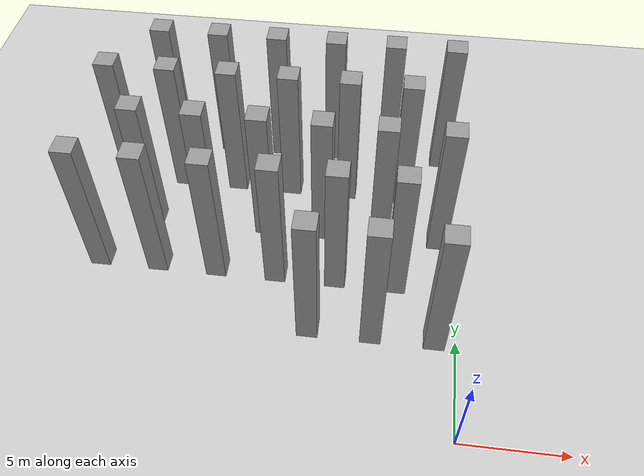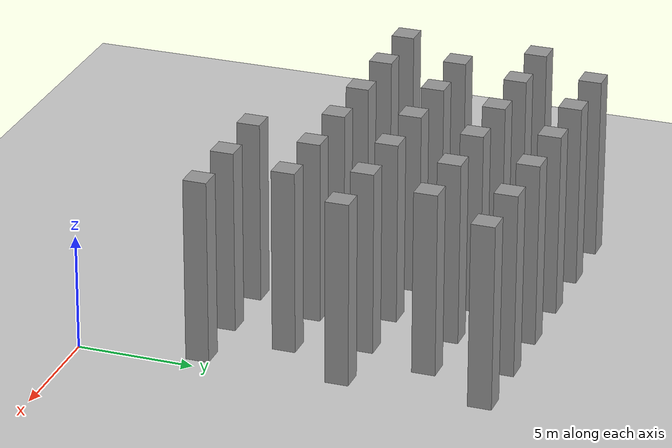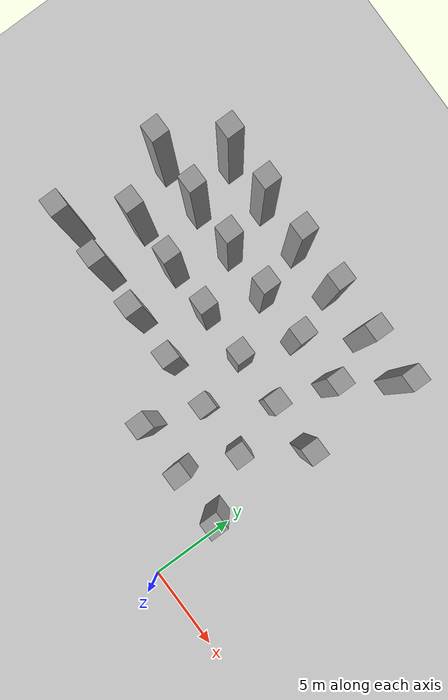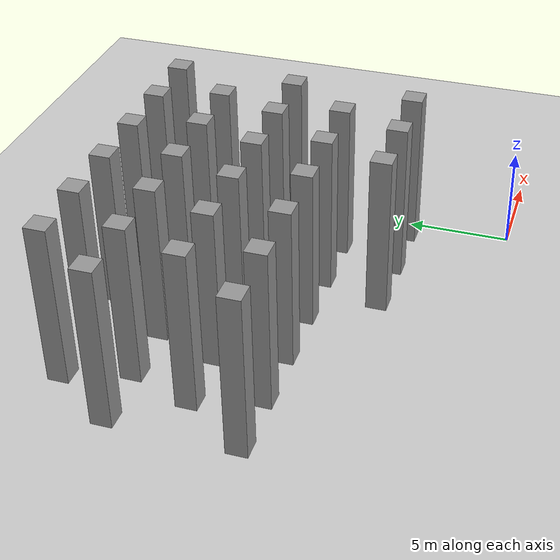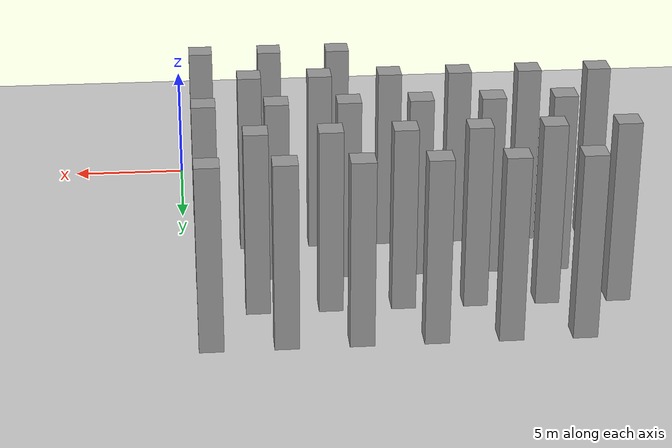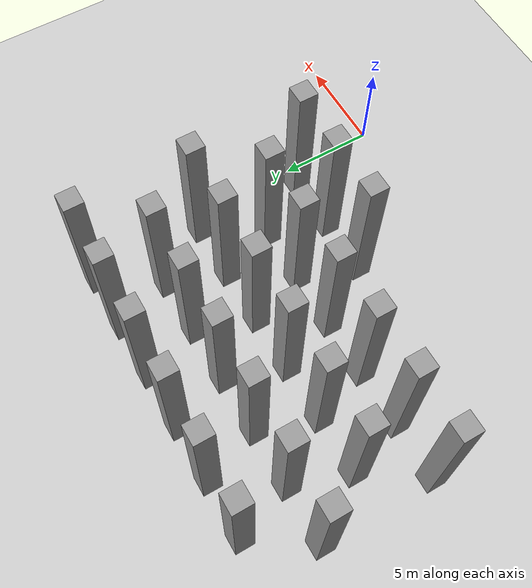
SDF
<sdf version="1.7">
 <world name="default">
  <model name="ground_plane">
   <static>1</static>
   <link name="link">
    <collision name="collision">
     <geometry><plane><normal>0 0 1</normal><size>100 100</size></plane></geometry>
     <surface>
      <contact><collide_bitmask>65535</collide_bitmask></contact>
      <friction><ode><mu>100</mu><mu2>50</mu2></ode></friction>
     </surface>
    </collision>
    <visual name="visual">
     <cast_shadows>0</cast_shadows>
     <geometry><plane><normal>0 0 1</normal><size>100 100</size></plane></geometry>
     <material>
      <script><uri>file://media/materials/scripts/gazebo.material</uri><name>Gazebo/Grey</name></script>
     </material>
    </visual>
   </link>
  </model>
  <model name="unit_box_static104">
   <link name="link">
    <inertial>
     <mass>1</mass>
     <inertia>
      <ixx>0.166667</ixx>
      <ixy>0</ixy>
      <ixz>0</ixz>
      <iyy>0.166667</iyy>
      <iyz>0</iyz>
      <izz>0.166667</izz>
     </inertia>
    </inertial>
    <visual name="visual">
     <geometry><box><size>1 1 8</size></box></geometry>
     <material>
      <script><name>Gazebo/Grey</name><uri>file://media/materials/scripts/gazebo.material</uri></script>
      <shader type="pixel"/>
     </material>
    </visual>
    <collision name="collision">
     <geometry><box><size>1 1 8</size></box></geometry>
     <surface>
      <friction>
       <ode><mu>1</mu><mu2>1</mu2><fdir1>0 0 0</fdir1><slip1>0</slip1><slip2>0</slip2></ode>
       <torsional>
        <coefficient>1</coefficient>
        <patch_radius>0</patch_radius>
        <surface_radius>0</surface_radius>
        <use_patch_radius>1</use_patch_radius>
        <ode><slip>0</slip></ode>
       </torsional>
      </friction>
      <bounce><restitution_coefficient>0</restitution_coefficient><threshold>1e+06</threshold></bounce>
      <contact>
       <collide_without_contact>0</collide_without_contact>
       <collide_without_contact_bitmask>1</collide_without_contact_bitmask>
       <collide_bitmask>1</collide_bitmask>
       <ode>
        <soft_cfm>0</soft_cfm>
        <soft_erp>0.2</soft_erp>
        <kp>1e+13</kp>
        <kd>1</kd>
        <max_vel>0.01</max_vel>
        <min_depth>0</min_depth>
       </ode>
       <bullet>
        <split_impulse>1</split_impulse>
        <split_impulse_penetration_threshold>-0.01</split_impulse_penetration_threshold>
        <soft_cfm>0</soft_cfm>
        <soft_erp>0.2</soft_erp>
        <kp>1e+13</kp>
        <kd>1</kd>
       </bullet>
      </contact>
     </surface>
    </collision>
   </link>
   <static>1</static>
   <pose>-7 5 4 0 -0 0</pose>
  </model>
  <model name="unit_box_static105">
   <link name="link">
    <inertial>
     <mass>1</mass>
     <inertia>
      <ixx>0.166667</ixx>
      <ixy>0</ixy>
      <ixz>0</ixz>
      <iyy>0.166667</iyy>
      <iyz>0</iyz>
      <izz>0.166667</izz>
     </inertia>
    </inertial>
    <visual name="visual">
     <geometry><box><size>1 1 8</size></box></geometry>
     <material>
      <script><name>Gazebo/Grey</name><uri>file://media/materials/scripts/gazebo.material</uri></script>
      <shader type="pixel"/>
     </material>
    </visual>
    <collision name="collision">
     <geometry><box><size>1 1 8</size></box></geometry>
     <surface>
      <friction>
       <ode><mu>1</mu><mu2>1</mu2><fdir1>0 0 0</fdir1><slip1>0</slip1><slip2>0</slip2></ode>
       <torsional>
        <coefficient>1</coefficient>
        <patch_radius>0</patch_radius>
        <surface_radius>0</surface_radius>
        <use_patch_radius>1</use_patch_radius>
        <ode><slip>0</slip></ode>
       </torsional>
      </friction>
      <bounce><restitution_coefficient>0</restitution_coefficient><threshold>1e+06</threshold></bounce>
      <contact>
       <collide_without_contact>0</collide_without_contact>
       <collide_without_contact_bitmask>1</collide_without_contact_bitmask>
       <collide_bitmask>1</collide_bitmask>
       <ode>
        <soft_cfm>0</soft_cfm>
        <soft_erp>0.2</soft_erp>
        <kp>1e+13</kp>
        <kd>1</kd>
        <max_vel>0.01</max_vel>
        <min_depth>0</min_depth>
       </ode>
       <bullet>
        <split_impulse>1</split_impulse>
        <split_impulse_penetration_threshold>-0.01</split_impulse_penetration_threshold>
        <soft_cfm>0</soft_cfm>
        <soft_erp>0.2</soft_erp>
        <kp>1e+13</kp>
        <kd>1</kd>
       </bullet>
      </contact>
     </surface>
    </collision>
   </link>
   <static>1</static>
   <pose>-4 5 4 0 -0 0</pose>
  </model>
  <model name="unit_box_static106">
   <link name="link">
    <inertial>
     <mass>1</mass>
     <inertia>
      <ixx>0.166667</ixx>
      <ixy>0</ixy>
      <ixz>0</ixz>
      <iyy>0.166667</iyy>
      <iyz>0</iyz>
      <izz>0.166667</izz>
     </inertia>
    </inertial>
    <visual name="visual">
     <geometry><box><size>1 1 8</size></box></geometry>
     <material>
      <script><name>Gazebo/Grey</name><uri>file://media/materials/scripts/gazebo.material</uri></script>
      <shader type="pixel"/>
     </material>
    </visual>
    <collision name="collision">
     <geometry><box><size>1 1 8</size></box></geometry>
     <surface>
      <friction>
       <ode><mu>1</mu><mu2>1</mu2><fdir1>0 0 0</fdir1><slip1>0</slip1><slip2>0</slip2></ode>
       <torsional>
        <coefficient>1</coefficient>
        <patch_radius>0</patch_radius>
        <surface_radius>0</surface_radius>
        <use_patch_radius>1</use_patch_radius>
        <ode><slip>0</slip></ode>
       </torsional>
      </friction>
      <bounce><restitution_coefficient>0</restitution_coefficient><threshold>1e+06</threshold></bounce>
      <contact>
       <collide_without_contact>0</collide_without_contact>
       <collide_without_contact_bitmask>1</collide_without_contact_bitmask>
       <collide_bitmask>1</collide_bitmask>
       <ode>
        <soft_cfm>0</soft_cfm>
        <soft_erp>0.2</soft_erp>
        <kp>1e+13</kp>
        <kd>1</kd>
        <max_vel>0.01</max_vel>
        <min_depth>0</min_depth>
       </ode>
       <bullet>
        <split_impulse>1</split_impulse>
        <split_impulse_penetration_threshold>-0.01</split_impulse_penetration_threshold>
        <soft_cfm>0</soft_cfm>
        <soft_erp>0.2</soft_erp>
        <kp>1e+13</kp>
        <kd>1</kd>
       </bullet>
      </contact>
     </surface>
    </collision>
   </link>
   <static>1</static>
   <pose>-1 5 4 0 -0 0</pose>
  </model>
  <model name="unit_box_static113">
   <link name="link">
    <inertial>
     <mass>1</mass>
     <inertia>
      <ixx>0.166667</ixx>
      <ixy>0</ixy>
      <ixz>0</ixz>
      <iyy>0.166667</iyy>
      <iyz>0</iyz>
      <izz>0.166667</izz>
     </inertia>
    </inertial>
    <visual name="visual">
     <geometry><box><size>1 1 8</size></box></geometry>
     <material>
      <script><name>Gazebo/Grey</name><uri>file://media/materials/scripts/gazebo.material</uri></script>
      <shader type="pixel"/>
     </material>
    </visual>
    <collision name="collision">
     <geometry><box><size>1 1 8</size></box></geometry>
     <surface>
      <friction>
       <ode><mu>1</mu><mu2>1</mu2><fdir1>0 0 0</fdir1><slip1>0</slip1><slip2>0</slip2></ode>
       <torsional>
        <coefficient>1</coefficient>
        <patch_radius>0</patch_radius>
        <surface_radius>0</surface_radius>
        <use_patch_radius>1</use_patch_radius>
        <ode><slip>0</slip></ode>
       </torsional>
      </friction>
      <bounce><restitution_coefficient>0</restitution_coefficient><threshold>1e+06</threshold></bounce>
      <contact>
       <collide_without_contact>0</collide_without_contact>
       <collide_without_contact_bitmask>1</collide_without_contact_bitmask>
       <collide_bitmask>1</collide_bitmask>
       <ode>
        <soft_cfm>0</soft_cfm>
        <soft_erp>0.2</soft_erp>
        <kp>1e+13</kp>
        <kd>1</kd>
        <max_vel>0.01</max_vel>
        <min_depth>0</min_depth>
       </ode>
       <bullet>
        <split_impulse>1</split_impulse>
        <split_impulse_penetration_threshold>-0.01</split_impulse_penetration_threshold>
        <soft_cfm>0</soft_cfm>
        <soft_erp>0.2</soft_erp>
        <kp>1e+13</kp>
        <kd>1</kd>
       </bullet>
      </contact>
     </surface>
    </collision>
   </link>
   <static>1</static>
   <pose>-18 8 4 0 -0 0</pose>
  </model>
  <model name="unit_box_static114">
   <link name="link">
    <inertial>
     <mass>1</mass>
     <inertia>
      <ixx>0.166667</ixx>
      <ixy>0</ixy>
      <ixz>0</ixz>
      <iyy>0.166667</iyy>
      <iyz>0</iyz>
      <izz>0.166667</izz>
     </inertia>
    </inertial>
    <visual name="visual">
     <geometry><box><size>1 1 8</size></box></geometry>
     <material>
      <script><name>Gazebo/Grey</name><uri>file://media/materials/scripts/gazebo.material</uri></script>
      <shader type="pixel"/>
     </material>
    </visual>
    <collision name="collision">
     <geometry><box><size>1 1 8</size></box></geometry>
     <surface>
      <friction>
       <ode><mu>1</mu><mu2>1</mu2><fdir1>0 0 0</fdir1><slip1>0</slip1><slip2>0</slip2></ode>
       <torsional>
        <coefficient>1</coefficient>
        <patch_radius>0</patch_radius>
        <surface_radius>0</surface_radius>
        <use_patch_radius>1</use_patch_radius>
        <ode><slip>0</slip></ode>
       </torsional>
      </friction>
      <bounce><restitution_coefficient>0</restitution_coefficient><threshold>1e+06</threshold></bounce>
      <contact>
       <collide_without_contact>0</collide_without_contact>
       <collide_without_contact_bitmask>1</collide_without_contact_bitmask>
       <collide_bitmask>1</collide_bitmask>
       <ode>
        <soft_cfm>0</soft_cfm>
        <soft_erp>0.2</soft_erp>
        <kp>1e+13</kp>
        <kd>1</kd>
        <max_vel>0.01</max_vel>
        <min_depth>0</min_depth>
       </ode>
       <bullet>
        <split_impulse>1</split_impulse>
        <split_impulse_penetration_threshold>-0.01</split_impulse_penetration_threshold>
        <soft_cfm>0</soft_cfm>
        <soft_erp>0.2</soft_erp>
        <kp>1e+13</kp>
        <kd>1</kd>
       </bullet>
      </contact>
     </surface>
    </collision>
   </link>
   <static>1</static>
   <pose>-15 8 4 0 -0 0</pose>
  </model>
  <model name="unit_box_static115">
   <link name="link">
    <inertial>
     <mass>1</mass>
     <inertia>
      <ixx>0.166667</ixx>
      <ixy>0</ixy>
      <ixz>0</ixz>
      <iyy>0.166667</iyy>
      <iyz>0</iyz>
      <izz>0.166667</izz>
     </inertia>
    </inertial>
    <visual name="visual">
     <geometry><box><size>1 1 8</size></box></geometry>
     <material>
      <script><name>Gazebo/Grey</name><uri>file://media/materials/scripts/gazebo.material</uri></script>
      <shader type="pixel"/>
     </material>
    </visual>
    <collision name="collision">
     <geometry><box><size>1 1 8</size></box></geometry>
     <surface>
      <friction>
       <ode><mu>1</mu><mu2>1</mu2><fdir1>0 0 0</fdir1><slip1>0</slip1><slip2>0</slip2></ode>
       <torsional>
        <coefficient>1</coefficient>
        <patch_radius>0</patch_radius>
        <surface_radius>0</surface_radius>
        <use_patch_radius>1</use_patch_radius>
        <ode><slip>0</slip></ode>
       </torsional>
      </friction>
      <bounce><restitution_coefficient>0</restitution_coefficient><threshold>1e+06</threshold></bounce>
      <contact>
       <collide_without_contact>0</collide_without_contact>
       <collide_without_contact_bitmask>1</collide_without_contact_bitmask>
       <collide_bitmask>1</collide_bitmask>
       <ode>
        <soft_cfm>0</soft_cfm>
        <soft_erp>0.2</soft_erp>
        <kp>1e+13</kp>
        <kd>1</kd>
        <max_vel>0.01</max_vel>
        <min_depth>0</min_depth>
       </ode>
       <bullet>
        <split_impulse>1</split_impulse>
        <split_impulse_penetration_threshold>-0.01</split_impulse_penetration_threshold>
        <soft_cfm>0</soft_cfm>
        <soft_erp>0.2</soft_erp>
        <kp>1e+13</kp>
        <kd>1</kd>
       </bullet>
      </contact>
     </surface>
    </collision>
   </link>
   <static>1</static>
   <pose>-12 8 4 0 -0 0</pose>
  </model>
  <model name="unit_box_static116">
   <link name="link">
    <inertial>
     <mass>1</mass>
     <inertia>
      <ixx>0.166667</ixx>
      <ixy>0</ixy>
      <ixz>0</ixz>
      <iyy>0.166667</iyy>
      <iyz>0</iyz>
      <izz>0.166667</izz>
     </inertia>
    </inertial>
    <visual name="visual">
     <geometry><box><size>1 1 8</size></box></geometry>
     <material>
      <script><name>Gazebo/Grey</name><uri>file://media/materials/scripts/gazebo.material</uri></script>
      <shader type="pixel"/>
     </material>
    </visual>
    <collision name="collision">
     <geometry><box><size>1 1 8</size></box></geometry>
     <surface>
      <friction>
       <ode><mu>1</mu><mu2>1</mu2><fdir1>0 0 0</fdir1><slip1>0</slip1><slip2>0</slip2></ode>
       <torsional>
        <coefficient>1</coefficient>
        <patch_radius>0</patch_radius>
        <surface_radius>0</surface_radius>
        <use_patch_radius>1</use_patch_radius>
        <ode><slip>0</slip></ode>
       </torsional>
      </friction>
      <bounce><restitution_coefficient>0</restitution_coefficient><threshold>1e+06</threshold></bounce>
      <contact>
       <collide_without_contact>0</collide_without_contact>
       <collide_without_contact_bitmask>1</collide_without_contact_bitmask>
       <collide_bitmask>1</collide_bitmask>
       <ode>
        <soft_cfm>0</soft_cfm>
        <soft_erp>0.2</soft_erp>
        <kp>1e+13</kp>
        <kd>1</kd>
        <max_vel>0.01</max_vel>
        <min_depth>0</min_depth>
       </ode>
       <bullet>
        <split_impulse>1</split_impulse>
        <split_impulse_penetration_threshold>-0.01</split_impulse_penetration_threshold>
        <soft_cfm>0</soft_cfm>
        <soft_erp>0.2</soft_erp>
        <kp>1e+13</kp>
        <kd>1</kd>
       </bullet>
      </contact>
     </surface>
    </collision>
   </link>
   <static>1</static>
   <pose>-9 8 4 0 -0 0</pose>
  </model>
  <model name="unit_box_static117">
   <link name="link">
    <inertial>
     <mass>1</mass>
     <inertia>
      <ixx>0.166667</ixx>
      <ixy>0</ixy>
      <ixz>0</ixz>
      <iyy>0.166667</iyy>
      <iyz>0</iyz>
      <izz>0.166667</izz>
     </inertia>
    </inertial>
    <visual name="visual">
     <geometry><box><size>1 1 8</size></box></geometry>
     <material>
      <script><name>Gazebo/Grey</name><uri>file://media/materials/scripts/gazebo.material</uri></script>
      <shader type="pixel"/>
     </material>
    </visual>
    <collision name="collision">
     <geometry><box><size>1 1 8</size></box></geometry>
     <surface>
      <friction>
       <ode><mu>1</mu><mu2>1</mu2><fdir1>0 0 0</fdir1><slip1>0</slip1><slip2>0</slip2></ode>
       <torsional>
        <coefficient>1</coefficient>
        <patch_radius>0</patch_radius>
        <surface_radius>0</surface_radius>
        <use_patch_radius>1</use_patch_radius>
        <ode><slip>0</slip></ode>
       </torsional>
      </friction>
      <bounce><restitution_coefficient>0</restitution_coefficient><threshold>1e+06</threshold></bounce>
      <contact>
       <collide_without_contact>0</collide_without_contact>
       <collide_without_contact_bitmask>1</collide_without_contact_bitmask>
       <collide_bitmask>1</collide_bitmask>
       <ode>
        <soft_cfm>0</soft_cfm>
        <soft_erp>0.2</soft_erp>
        <kp>1e+13</kp>
        <kd>1</kd>
        <max_vel>0.01</max_vel>
        <min_depth>0</min_depth>
       </ode>
       <bullet>
        <split_impulse>1</split_impulse>
        <split_impulse_penetration_threshold>-0.01</split_impulse_penetration_threshold>
        <soft_cfm>0</soft_cfm>
        <soft_erp>0.2</soft_erp>
        <kp>1e+13</kp>
        <kd>1</kd>
       </bullet>
      </contact>
     </surface>
    </collision>
   </link>
   <static>1</static>
   <pose>-6 8 4 0 -0 0</pose>
  </model>
  <model name="unit_box_static118">
   <link name="link">
    <inertial>
     <mass>1</mass>
     <inertia>
      <ixx>0.166667</ixx>
      <ixy>0</ixy>
      <ixz>0</ixz>
      <iyy>0.166667</iyy>
      <iyz>0</iyz>
      <izz>0.166667</izz>
     </inertia>
    </inertial>
    <visual name="visual">
     <geometry><box><size>1 1 8</size></box></geometry>
     <material>
      <script><name>Gazebo/Grey</name><uri>file://media/materials/scripts/gazebo.material</uri></script>
      <shader type="pixel"/>
     </material>
    </visual>
    <collision name="collision">
     <geometry><box><size>1 1 8</size></box></geometry>
     <surface>
      <friction>
       <ode><mu>1</mu><mu2>1</mu2><fdir1>0 0 0</fdir1><slip1>0</slip1><slip2>0</slip2></ode>
       <torsional>
        <coefficient>1</coefficient>
        <patch_radius>0</patch_radius>
        <surface_radius>0</surface_radius>
        <use_patch_radius>1</use_patch_radius>
        <ode><slip>0</slip></ode>
       </torsional>
      </friction>
      <bounce><restitution_coefficient>0</restitution_coefficient><threshold>1e+06</threshold></bounce>
      <contact>
       <collide_without_contact>0</collide_without_contact>
       <collide_without_contact_bitmask>1</collide_without_contact_bitmask>
       <collide_bitmask>1</collide_bitmask>
       <ode>
        <soft_cfm>0</soft_cfm>
        <soft_erp>0.2</soft_erp>
        <kp>1e+13</kp>
        <kd>1</kd>
        <max_vel>0.01</max_vel>
        <min_depth>0</min_depth>
       </ode>
       <bullet>
        <split_impulse>1</split_impulse>
        <split_impulse_penetration_threshold>-0.01</split_impulse_penetration_threshold>
        <soft_cfm>0</soft_cfm>
        <soft_erp>0.2</soft_erp>
        <kp>1e+13</kp>
        <kd>1</kd>
       </bullet>
      </contact>
     </surface>
    </collision>
   </link>
   <static>1</static>
   <pose>-3 8 4 0 -0 0</pose>
  </model>
  <model name="unit_box_static126">
   <link name="link">
    <inertial>
     <mass>1</mass>
     <inertia>
      <ixx>0.166667</ixx>
      <ixy>0</ixy>
      <ixz>0</ixz>
      <iyy>0.166667</iyy>
      <iyz>0</iyz>
      <izz>0.166667</izz>
     </inertia>
    </inertial>
    <visual name="visual">
     <geometry><box><size>1 1 8</size></box></geometry>
     <material>
      <script><name>Gazebo/Grey</name><uri>file://media/materials/scripts/gazebo.material</uri></script>
      <shader type="pixel"/>
     </material>
    </visual>
    <collision name="collision">
     <geometry><box><size>1 1 8</size></box></geometry>
     <surface>
      <friction>
       <ode><mu>1</mu><mu2>1</mu2><fdir1>0 0 0</fdir1><slip1>0</slip1><slip2>0</slip2></ode>
       <torsional>
        <coefficient>1</coefficient>
        <patch_radius>0</patch_radius>
        <surface_radius>0</surface_radius>
        <use_patch_radius>1</use_patch_radius>
        <ode><slip>0</slip></ode>
       </torsional>
      </friction>
      <bounce><restitution_coefficient>0</restitution_coefficient><threshold>1e+06</threshold></bounce>
      <contact>
       <collide_without_contact>0</collide_without_contact>
       <collide_without_contact_bitmask>1</collide_without_contact_bitmask>
       <collide_bitmask>1</collide_bitmask>
       <ode>
        <soft_cfm>0</soft_cfm>
        <soft_erp>0.2</soft_erp>
        <kp>1e+13</kp>
        <kd>1</kd>
        <max_vel>0.01</max_vel>
        <min_depth>0</min_depth>
       </ode>
       <bullet>
        <split_impulse>1</split_impulse>
        <split_impulse_penetration_threshold>-0.01</split_impulse_penetration_threshold>
        <soft_cfm>0</soft_cfm>
        <soft_erp>0.2</soft_erp>
        <kp>1e+13</kp>
        <kd>1</kd>
       </bullet>
      </contact>
     </surface>
    </collision>
   </link>
   <static>1</static>
   <pose>-16 11 4 0 -0 0</pose>
  </model>
  <model name="unit_box_static127">
   <link name="link">
    <inertial>
     <mass>1</mass>
     <inertia>
      <ixx>0.166667</ixx>
      <ixy>0</ixy>
      <ixz>0</ixz>
      <iyy>0.166667</iyy>
      <iyz>0</iyz>
      <izz>0.166667</izz>
     </inertia>
    </inertial>
    <visual name="visual">
     <geometry><box><size>1 1 8</size></box></geometry>
     <material>
      <script><name>Gazebo/Grey</name><uri>file://media/materials/scripts/gazebo.material</uri></script>
      <shader type="pixel"/>
     </material>
    </visual>
    <collision name="collision">
     <geometry><box><size>1 1 8</size></box></geometry>
     <surface>
      <friction>
       <ode><mu>1</mu><mu2>1</mu2><fdir1>0 0 0</fdir1><slip1>0</slip1><slip2>0</slip2></ode>
       <torsional>
        <coefficient>1</coefficient>
        <patch_radius>0</patch_radius>
        <surface_radius>0</surface_radius>
        <use_patch_radius>1</use_patch_radius>
        <ode><slip>0</slip></ode>
       </torsional>
      </friction>
      <bounce><restitution_coefficient>0</restitution_coefficient><threshold>1e+06</threshold></bounce>
      <contact>
       <collide_without_contact>0</collide_without_contact>
       <collide_without_contact_bitmask>1</collide_without_contact_bitmask>
       <collide_bitmask>1</collide_bitmask>
       <ode>
        <soft_cfm>0</soft_cfm>
        <soft_erp>0.2</soft_erp>
        <kp>1e+13</kp>
        <kd>1</kd>
        <max_vel>0.01</max_vel>
        <min_depth>0</min_depth>
       </ode>
       <bullet>
        <split_impulse>1</split_impulse>
        <split_impulse_penetration_threshold>-0.01</split_impulse_penetration_threshold>
        <soft_cfm>0</soft_cfm>
        <soft_erp>0.2</soft_erp>
        <kp>1e+13</kp>
        <kd>1</kd>
       </bullet>
      </contact>
     </surface>
    </collision>
   </link>
   <static>1</static>
   <pose>-13 11 4 0 -0 0</pose>
  </model>
  <model name="unit_box_static128">
   <link name="link">
    <inertial>
     <mass>1</mass>
     <inertia>
      <ixx>0.166667</ixx>
      <ixy>0</ixy>
      <ixz>0</ixz>
      <iyy>0.166667</iyy>
      <iyz>0</iyz>
      <izz>0.166667</izz>
     </inertia>
    </inertial>
    <visual name="visual">
     <geometry><box><size>1 1 8</size></box></geometry>
     <material>
      <script><name>Gazebo/Grey</name><uri>file://media/materials/scripts/gazebo.material</uri></script>
      <shader type="pixel"/>
     </material>
    </visual>
    <collision name="collision">
     <geometry><box><size>1 1 8</size></box></geometry>
     <surface>
      <friction>
       <ode><mu>1</mu><mu2>1</mu2><fdir1>0 0 0</fdir1><slip1>0</slip1><slip2>0</slip2></ode>
       <torsional>
        <coefficient>1</coefficient>
        <patch_radius>0</patch_radius>
        <surface_radius>0</surface_radius>
        <use_patch_radius>1</use_patch_radius>
        <ode><slip>0</slip></ode>
       </torsional>
      </friction>
      <bounce><restitution_coefficient>0</restitution_coefficient><threshold>1e+06</threshold></bounce>
      <contact>
       <collide_without_contact>0</collide_without_contact>
       <collide_without_contact_bitmask>1</collide_without_contact_bitmask>
       <collide_bitmask>1</collide_bitmask>
       <ode>
        <soft_cfm>0</soft_cfm>
        <soft_erp>0.2</soft_erp>
        <kp>1e+13</kp>
        <kd>1</kd>
        <max_vel>0.01</max_vel>
        <min_depth>0</min_depth>
       </ode>
       <bullet>
        <split_impulse>1</split_impulse>
        <split_impulse_penetration_threshold>-0.01</split_impulse_penetration_threshold>
        <soft_cfm>0</soft_cfm>
        <soft_erp>0.2</soft_erp>
        <kp>1e+13</kp>
        <kd>1</kd>
       </bullet>
      </contact>
     </surface>
    </collision>
   </link>
   <static>1</static>
   <pose>-10 11 4 0 -0 0</pose>
  </model>
  <model name="unit_box_static129">
   <link name="link">
    <inertial>
     <mass>1</mass>
     <inertia>
      <ixx>0.166667</ixx>
      <ixy>0</ixy>
      <ixz>0</ixz>
      <iyy>0.166667</iyy>
      <iyz>0</iyz>
      <izz>0.166667</izz>
     </inertia>
    </inertial>
    <visual name="visual">
     <geometry><box><size>1 1 8</size></box></geometry>
     <material>
      <script><name>Gazebo/Grey</name><uri>file://media/materials/scripts/gazebo.material</uri></script>
      <shader type="pixel"/>
     </material>
    </visual>
    <collision name="collision">
     <geometry><box><size>1 1 8</size></box></geometry>
     <surface>
      <friction>
       <ode><mu>1</mu><mu2>1</mu2><fdir1>0 0 0</fdir1><slip1>0</slip1><slip2>0</slip2></ode>
       <torsional>
        <coefficient>1</coefficient>
        <patch_radius>0</patch_radius>
        <surface_radius>0</surface_radius>
        <use_patch_radius>1</use_patch_radius>
        <ode><slip>0</slip></ode>
       </torsional>
      </friction>
      <bounce><restitution_coefficient>0</restitution_coefficient><threshold>1e+06</threshold></bounce>
      <contact>
       <collide_without_contact>0</collide_without_contact>
       <collide_without_contact_bitmask>1</collide_without_contact_bitmask>
       <collide_bitmask>1</collide_bitmask>
       <ode>
        <soft_cfm>0</soft_cfm>
        <soft_erp>0.2</soft_erp>
        <kp>1e+13</kp>
        <kd>1</kd>
        <max_vel>0.01</max_vel>
        <min_depth>0</min_depth>
       </ode>
       <bullet>
        <split_impulse>1</split_impulse>
        <split_impulse_penetration_threshold>-0.01</split_impulse_penetration_threshold>
        <soft_cfm>0</soft_cfm>
        <soft_erp>0.2</soft_erp>
        <kp>1e+13</kp>
        <kd>1</kd>
       </bullet>
      </contact>
     </surface>
    </collision>
   </link>
   <static>1</static>
   <pose>-7 11 4 0 -0 0</pose>
  </model>
  <model name="unit_box_static130">
   <link name="link">
    <inertial>
     <mass>1</mass>
     <inertia>
      <ixx>0.166667</ixx>
      <ixy>0</ixy>
      <ixz>0</ixz>
      <iyy>0.166667</iyy>
      <iyz>0</iyz>
      <izz>0.166667</izz>
     </inertia>
    </inertial>
    <visual name="visual">
     <geometry><box><size>1 1 8</size></box></geometry>
     <material>
      <script><name>Gazebo/Grey</name><uri>file://media/materials/scripts/gazebo.material</uri></script>
      <shader type="pixel"/>
     </material>
    </visual>
    <collision name="collision">
     <geometry><box><size>1 1 8</size></box></geometry>
     <surface>
      <friction>
       <ode><mu>1</mu><mu2>1</mu2><fdir1>0 0 0</fdir1><slip1>0</slip1><slip2>0</slip2></ode>
       <torsional>
        <coefficient>1</coefficient>
        <patch_radius>0</patch_radius>
        <surface_radius>0</surface_radius>
        <use_patch_radius>1</use_patch_radius>
        <ode><slip>0</slip></ode>
       </torsional>
      </friction>
      <bounce><restitution_coefficient>0</restitution_coefficient><threshold>1e+06</threshold></bounce>
      <contact>
       <collide_without_contact>0</collide_without_contact>
       <collide_without_contact_bitmask>1</collide_without_contact_bitmask>
       <collide_bitmask>1</collide_bitmask>
       <ode>
        <soft_cfm>0</soft_cfm>
        <soft_erp>0.2</soft_erp>
        <kp>1e+13</kp>
        <kd>1</kd>
        <max_vel>0.01</max_vel>
        <min_depth>0</min_depth>
       </ode>
       <bullet>
        <split_impulse>1</split_impulse>
        <split_impulse_penetration_threshold>-0.01</split_impulse_penetration_threshold>
        <soft_cfm>0</soft_cfm>
        <soft_erp>0.2</soft_erp>
        <kp>1e+13</kp>
        <kd>1</kd>
       </bullet>
      </contact>
     </surface>
    </collision>
   </link>
   <static>1</static>
   <pose>-4 11 4 0 -0 0</pose>
  </model>
  <model name="unit_box_static131">
   <link name="link">
    <inertial>
     <mass>1</mass>
     <inertia>
      <ixx>0.166667</ixx>
      <ixy>0</ixy>
      <ixz>0</ixz>
      <iyy>0.166667</iyy>
      <iyz>0</iyz>
      <izz>0.166667</izz>
     </inertia>
    </inertial>
    <visual name="visual">
     <geometry><box><size>1 1 8</size></box></geometry>
     <material>
      <script><name>Gazebo/Grey</name><uri>file://media/materials/scripts/gazebo.material</uri></script>
      <shader type="pixel"/>
     </material>
    </visual>
    <collision name="collision">
     <geometry><box><size>1 1 8</size></box></geometry>
     <surface>
      <friction>
       <ode><mu>1</mu><mu2>1</mu2><fdir1>0 0 0</fdir1><slip1>0</slip1><slip2>0</slip2></ode>
       <torsional>
        <coefficient>1</coefficient>
        <patch_radius>0</patch_radius>
        <surface_radius>0</surface_radius>
        <use_patch_radius>1</use_patch_radius>
        <ode><slip>0</slip></ode>
       </torsional>
      </friction>
      <bounce><restitution_coefficient>0</restitution_coefficient><threshold>1e+06</threshold></bounce>
      <contact>
       <collide_without_contact>0</collide_without_contact>
       <collide_without_contact_bitmask>1</collide_without_contact_bitmask>
       <collide_bitmask>1</collide_bitmask>
       <ode>
        <soft_cfm>0</soft_cfm>
        <soft_erp>0.2</soft_erp>
        <kp>1e+13</kp>
        <kd>1</kd>
        <max_vel>0.01</max_vel>
        <min_depth>0</min_depth>
       </ode>
       <bullet>
        <split_impulse>1</split_impulse>
        <split_impulse_penetration_threshold>-0.01</split_impulse_penetration_threshold>
        <soft_cfm>0</soft_cfm>
        <soft_erp>0.2</soft_erp>
        <kp>1e+13</kp>
        <kd>1</kd>
       </bullet>
      </contact>
     </surface>
    </collision>
   </link>
   <static>1</static>
   <pose>-1 11 4 0 -0 0</pose>
  </model>
  <model name="unit_box_static138">
   <link name="link">
    <inertial>
     <mass>1</mass>
     <inertia>
      <ixx>0.166667</ixx>
      <ixy>0</ixy>
      <ixz>0</ixz>
      <iyy>0.166667</iyy>
      <iyz>0</iyz>
      <izz>0.166667</izz>
     </inertia>
    </inertial>
    <visual name="visual">
     <geometry><box><size>1 1 8</size></box></geometry>
     <material>
      <script><name>Gazebo/Grey</name><uri>file://media/materials/scripts/gazebo.material</uri></script>
      <shader type="pixel"/>
     </material>
    </visual>
    <collision name="collision">
     <geometry><box><size>1 1 8</size></box></geometry>
     <surface>
      <friction>
       <ode><mu>1</mu><mu2>1</mu2><fdir1>0 0 0</fdir1><slip1>0</slip1><slip2>0</slip2></ode>
       <torsional>
        <coefficient>1</coefficient>
        <patch_radius>0</patch_radius>
        <surface_radius>0</surface_radius>
        <use_patch_radius>1</use_patch_radius>
        <ode><slip>0</slip></ode>
       </torsional>
      </friction>
      <bounce><restitution_coefficient>0</restitution_coefficient><threshold>1e+06</threshold></bounce>
      <contact>
       <collide_without_contact>0</collide_without_contact>
       <collide_without_contact_bitmask>1</collide_without_contact_bitmask>
       <collide_bitmask>1</collide_bitmask>
       <ode>
        <soft_cfm>0</soft_cfm>
        <soft_erp>0.2</soft_erp>
        <kp>1e+13</kp>
        <kd>1</kd>
        <max_vel>0.01</max_vel>
        <min_depth>0</min_depth>
       </ode>
       <bullet>
        <split_impulse>1</split_impulse>
        <split_impulse_penetration_threshold>-0.01</split_impulse_penetration_threshold>
        <soft_cfm>0</soft_cfm>
        <soft_erp>0.2</soft_erp>
        <kp>1e+13</kp>
        <kd>1</kd>
       </bullet>
      </contact>
     </surface>
    </collision>
   </link>
   <static>1</static>
   <pose>-18 14 4 0 -0 0</pose>
  </model>
  <model name="unit_box_static139">
   <link name="link">
    <inertial>
     <mass>1</mass>
     <inertia>
      <ixx>0.166667</ixx>
      <ixy>0</ixy>
      <ixz>0</ixz>
      <iyy>0.166667</iyy>
      <iyz>0</iyz>
      <izz>0.166667</izz>
     </inertia>
    </inertial>
    <visual name="visual">
     <geometry><box><size>1 1 8</size></box></geometry>
     <material>
      <script><name>Gazebo/Grey</name><uri>file://media/materials/scripts/gazebo.material</uri></script>
      <shader type="pixel"/>
     </material>
    </visual>
    <collision name="collision">
     <geometry><box><size>1 1 8</size></box></geometry>
     <surface>
      <friction>
       <ode><mu>1</mu><mu2>1</mu2><fdir1>0 0 0</fdir1><slip1>0</slip1><slip2>0</slip2></ode>
       <torsional>
        <coefficient>1</coefficient>
        <patch_radius>0</patch_radius>
        <surface_radius>0</surface_radius>
        <use_patch_radius>1</use_patch_radius>
        <ode><slip>0</slip></ode>
       </torsional>
      </friction>
      <bounce><restitution_coefficient>0</restitution_coefficient><threshold>1e+06</threshold></bounce>
      <contact>
       <collide_without_contact>0</collide_without_contact>
       <collide_without_contact_bitmask>1</collide_without_contact_bitmask>
       <collide_bitmask>1</collide_bitmask>
       <ode>
        <soft_cfm>0</soft_cfm>
        <soft_erp>0.2</soft_erp>
        <kp>1e+13</kp>
        <kd>1</kd>
        <max_vel>0.01</max_vel>
        <min_depth>0</min_depth>
       </ode>
       <bullet>
        <split_impulse>1</split_impulse>
        <split_impulse_penetration_threshold>-0.01</split_impulse_penetration_threshold>
        <soft_cfm>0</soft_cfm>
        <soft_erp>0.2</soft_erp>
        <kp>1e+13</kp>
        <kd>1</kd>
       </bullet>
      </contact>
     </surface>
    </collision>
   </link>
   <static>1</static>
   <pose>-15 14 4 0 -0 0</pose>
  </model>
  <model name="unit_box_static140">
   <link name="link">
    <inertial>
     <mass>1</mass>
     <inertia>
      <ixx>0.166667</ixx>
      <ixy>0</ixy>
      <ixz>0</ixz>
      <iyy>0.166667</iyy>
      <iyz>0</iyz>
      <izz>0.166667</izz>
     </inertia>
    </inertial>
    <visual name="visual">
     <geometry><box><size>1 1 8</size></box></geometry>
     <material>
      <script><name>Gazebo/Grey</name><uri>file://media/materials/scripts/gazebo.material</uri></script>
      <shader type="pixel"/>
     </material>
    </visual>
    <collision name="collision">
     <geometry><box><size>1 1 8</size></box></geometry>
     <surface>
      <friction>
       <ode><mu>1</mu><mu2>1</mu2><fdir1>0 0 0</fdir1><slip1>0</slip1><slip2>0</slip2></ode>
       <torsional>
        <coefficient>1</coefficient>
        <patch_radius>0</patch_radius>
        <surface_radius>0</surface_radius>
        <use_patch_radius>1</use_patch_radius>
        <ode><slip>0</slip></ode>
       </torsional>
      </friction>
      <bounce><restitution_coefficient>0</restitution_coefficient><threshold>1e+06</threshold></bounce>
      <contact>
       <collide_without_contact>0</collide_without_contact>
       <collide_without_contact_bitmask>1</collide_without_contact_bitmask>
       <collide_bitmask>1</collide_bitmask>
       <ode>
        <soft_cfm>0</soft_cfm>
        <soft_erp>0.2</soft_erp>
        <kp>1e+13</kp>
        <kd>1</kd>
        <max_vel>0.01</max_vel>
        <min_depth>0</min_depth>
       </ode>
       <bullet>
        <split_impulse>1</split_impulse>
        <split_impulse_penetration_threshold>-0.01</split_impulse_penetration_threshold>
        <soft_cfm>0</soft_cfm>
        <soft_erp>0.2</soft_erp>
        <kp>1e+13</kp>
        <kd>1</kd>
       </bullet>
      </contact>
     </surface>
    </collision>
   </link>
   <static>1</static>
   <pose>-12 14 4 0 -0 0</pose>
  </model>
  <model name="unit_box_static141">
   <link name="link">
    <inertial>
     <mass>1</mass>
     <inertia>
      <ixx>0.166667</ixx>
      <ixy>0</ixy>
      <ixz>0</ixz>
      <iyy>0.166667</iyy>
      <iyz>0</iyz>
      <izz>0.166667</izz>
     </inertia>
    </inertial>
    <visual name="visual">
     <geometry><box><size>1 1 8</size></box></geometry>
     <material>
      <script><name>Gazebo/Grey</name><uri>file://media/materials/scripts/gazebo.material</uri></script>
      <shader type="pixel"/>
     </material>
    </visual>
    <collision name="collision">
     <geometry><box><size>1 1 8</size></box></geometry>
     <surface>
      <friction>
       <ode><mu>1</mu><mu2>1</mu2><fdir1>0 0 0</fdir1><slip1>0</slip1><slip2>0</slip2></ode>
       <torsional>
        <coefficient>1</coefficient>
        <patch_radius>0</patch_radius>
        <surface_radius>0</surface_radius>
        <use_patch_radius>1</use_patch_radius>
        <ode><slip>0</slip></ode>
       </torsional>
      </friction>
      <bounce><restitution_coefficient>0</restitution_coefficient><threshold>1e+06</threshold></bounce>
      <contact>
       <collide_without_contact>0</collide_without_contact>
       <collide_without_contact_bitmask>1</collide_without_contact_bitmask>
       <collide_bitmask>1</collide_bitmask>
       <ode>
        <soft_cfm>0</soft_cfm>
        <soft_erp>0.2</soft_erp>
        <kp>1e+13</kp>
        <kd>1</kd>
        <max_vel>0.01</max_vel>
        <min_depth>0</min_depth>
       </ode>
       <bullet>
        <split_impulse>1</split_impulse>
        <split_impulse_penetration_threshold>-0.01</split_impulse_penetration_threshold>
        <soft_cfm>0</soft_cfm>
        <soft_erp>0.2</soft_erp>
        <kp>1e+13</kp>
        <kd>1</kd>
       </bullet>
      </contact>
     </surface>
    </collision>
   </link>
   <static>1</static>
   <pose>-9 14 4 0 -0 0</pose>
  </model>
  <model name="unit_box_static142">
   <link name="link">
    <inertial>
     <mass>1</mass>
     <inertia>
      <ixx>0.166667</ixx>
      <ixy>0</ixy>
      <ixz>0</ixz>
      <iyy>0.166667</iyy>
      <iyz>0</iyz>
      <izz>0.166667</izz>
     </inertia>
    </inertial>
    <visual name="visual">
     <geometry><box><size>1 1 8</size></box></geometry>
     <material>
      <script><name>Gazebo/Grey</name><uri>file://media/materials/scripts/gazebo.material</uri></script>
      <shader type="pixel"/>
     </material>
    </visual>
    <collision name="collision">
     <geometry><box><size>1 1 8</size></box></geometry>
     <surface>
      <friction>
       <ode><mu>1</mu><mu2>1</mu2><fdir1>0 0 0</fdir1><slip1>0</slip1><slip2>0</slip2></ode>
       <torsional>
        <coefficient>1</coefficient>
        <patch_radius>0</patch_radius>
        <surface_radius>0</surface_radius>
        <use_patch_radius>1</use_patch_radius>
        <ode><slip>0</slip></ode>
       </torsional>
      </friction>
      <bounce><restitution_coefficient>0</restitution_coefficient><threshold>1e+06</threshold></bounce>
      <contact>
       <collide_without_contact>0</collide_without_contact>
       <collide_without_contact_bitmask>1</collide_without_contact_bitmask>
       <collide_bitmask>1</collide_bitmask>
       <ode>
        <soft_cfm>0</soft_cfm>
        <soft_erp>0.2</soft_erp>
        <kp>1e+13</kp>
        <kd>1</kd>
        <max_vel>0.01</max_vel>
        <min_depth>0</min_depth>
       </ode>
       <bullet>
        <split_impulse>1</split_impulse>
        <split_impulse_penetration_threshold>-0.01</split_impulse_penetration_threshold>
        <soft_cfm>0</soft_cfm>
        <soft_erp>0.2</soft_erp>
        <kp>1e+13</kp>
        <kd>1</kd>
       </bullet>
      </contact>
     </surface>
    </collision>
   </link>
   <static>1</static>
   <pose>-6 14 4 0 -0 0</pose>
  </model>
  <model name="unit_box_static143">
   <link name="link">
    <inertial>
     <mass>1</mass>
     <inertia>
      <ixx>0.166667</ixx>
      <ixy>0</ixy>
      <ixz>0</ixz>
      <iyy>0.166667</iyy>
      <iyz>0</iyz>
      <izz>0.166667</izz>
     </inertia>
    </inertial>
    <visual name="visual">
     <geometry><box><size>1 1 8</size></box></geometry>
     <material>
      <script><name>Gazebo/Grey</name><uri>file://media/materials/scripts/gazebo.material</uri></script>
      <shader type="pixel"/>
     </material>
    </visual>
    <collision name="collision">
     <geometry><box><size>1 1 8</size></box></geometry>
     <surface>
      <friction>
       <ode><mu>1</mu><mu2>1</mu2><fdir1>0 0 0</fdir1><slip1>0</slip1><slip2>0</slip2></ode>
       <torsional>
        <coefficient>1</coefficient>
        <patch_radius>0</patch_radius>
        <surface_radius>0</surface_radius>
        <use_patch_radius>1</use_patch_radius>
        <ode><slip>0</slip></ode>
       </torsional>
      </friction>
      <bounce><restitution_coefficient>0</restitution_coefficient><threshold>1e+06</threshold></bounce>
      <contact>
       <collide_without_contact>0</collide_without_contact>
       <collide_without_contact_bitmask>1</collide_without_contact_bitmask>
       <collide_bitmask>1</collide_bitmask>
       <ode>
        <soft_cfm>0</soft_cfm>
        <soft_erp>0.2</soft_erp>
        <kp>1e+13</kp>
        <kd>1</kd>
        <max_vel>0.01</max_vel>
        <min_depth>0</min_depth>
       </ode>
       <bullet>
        <split_impulse>1</split_impulse>
        <split_impulse_penetration_threshold>-0.01</split_impulse_penetration_threshold>
        <soft_cfm>0</soft_cfm>
        <soft_erp>0.2</soft_erp>
        <kp>1e+13</kp>
        <kd>1</kd>
       </bullet>
      </contact>
     </surface>
    </collision>
   </link>
   <static>1</static>
   <pose>-3 14 4 0 -0 0</pose>
  </model>
  <model name="unit_box_static151">
   <link name="link">
    <inertial>
     <mass>1</mass>
     <inertia>
      <ixx>0.166667</ixx>
      <ixy>0</ixy>
      <ixz>0</ixz>
      <iyy>0.166667</iyy>
      <iyz>0</iyz>
      <izz>0.166667</izz>
     </inertia>
    </inertial>
    <visual name="visual">
     <geometry><box><size>1 1 8</size></box></geometry>
     <material>
      <script><name>Gazebo/Grey</name><uri>file://media/materials/scripts/gazebo.material</uri></script>
      <shader type="pixel"/>
     </material>
    </visual>
    <collision name="collision">
     <geometry><box><size>1 1 8</size></box></geometry>
     <surface>
      <friction>
       <ode><mu>1</mu><mu2>1</mu2><fdir1>0 0 0</fdir1><slip1>0</slip1><slip2>0</slip2></ode>
       <torsional>
        <coefficient>1</coefficient>
        <patch_radius>0</patch_radius>
        <surface_radius>0</surface_radius>
        <use_patch_radius>1</use_patch_radius>
        <ode><slip>0</slip></ode>
       </torsional>
      </friction>
      <bounce><restitution_coefficient>0</restitution_coefficient><threshold>1e+06</threshold></bounce>
      <contact>
       <collide_without_contact>0</collide_without_contact>
       <collide_without_contact_bitmask>1</collide_without_contact_bitmask>
       <collide_bitmask>1</collide_bitmask>
       <ode>
        <soft_cfm>0</soft_cfm>
        <soft_erp>0.2</soft_erp>
        <kp>1e+13</kp>
        <kd>1</kd>
        <max_vel>0.01</max_vel>
        <min_depth>0</min_depth>
       </ode>
       <bullet>
        <split_impulse>1</split_impulse>
        <split_impulse_penetration_threshold>-0.01</split_impulse_penetration_threshold>
        <soft_cfm>0</soft_cfm>
        <soft_erp>0.2</soft_erp>
        <kp>1e+13</kp>
        <kd>1</kd>
       </bullet>
      </contact>
     </surface>
    </collision>
   </link>
   <static>1</static>
   <pose>-16 17 4 0 -0 0</pose>
  </model>
  <model name="unit_box_static152">
   <link name="link">
    <inertial>
     <mass>1</mass>
     <inertia>
      <ixx>0.166667</ixx>
      <ixy>0</ixy>
      <ixz>0</ixz>
      <iyy>0.166667</iyy>
      <iyz>0</iyz>
      <izz>0.166667</izz>
     </inertia>
    </inertial>
    <visual name="visual">
     <geometry><box><size>1 1 8</size></box></geometry>
     <material>
      <script><name>Gazebo/Grey</name><uri>file://media/materials/scripts/gazebo.material</uri></script>
      <shader type="pixel"/>
     </material>
    </visual>
    <collision name="collision">
     <geometry><box><size>1 1 8</size></box></geometry>
     <surface>
      <friction>
       <ode><mu>1</mu><mu2>1</mu2><fdir1>0 0 0</fdir1><slip1>0</slip1><slip2>0</slip2></ode>
       <torsional>
        <coefficient>1</coefficient>
        <patch_radius>0</patch_radius>
        <surface_radius>0</surface_radius>
        <use_patch_radius>1</use_patch_radius>
        <ode><slip>0</slip></ode>
       </torsional>
      </friction>
      <bounce><restitution_coefficient>0</restitution_coefficient><threshold>1e+06</threshold></bounce>
      <contact>
       <collide_without_contact>0</collide_without_contact>
       <collide_without_contact_bitmask>1</collide_without_contact_bitmask>
       <collide_bitmask>1</collide_bitmask>
       <ode>
        <soft_cfm>0</soft_cfm>
        <soft_erp>0.2</soft_erp>
        <kp>1e+13</kp>
        <kd>1</kd>
        <max_vel>0.01</max_vel>
        <min_depth>0</min_depth>
       </ode>
       <bullet>
        <split_impulse>1</split_impulse>
        <split_impulse_penetration_threshold>-0.01</split_impulse_penetration_threshold>
        <soft_cfm>0</soft_cfm>
        <soft_erp>0.2</soft_erp>
        <kp>1e+13</kp>
        <kd>1</kd>
       </bullet>
      </contact>
     </surface>
    </collision>
   </link>
   <static>1</static>
   <pose>-13 17 4 0 -0 0</pose>
  </model>
  <model name="unit_box_static153">
   <link name="link">
    <inertial>
     <mass>1</mass>
     <inertia>
      <ixx>0.166667</ixx>
      <ixy>0</ixy>
      <ixz>0</ixz>
      <iyy>0.166667</iyy>
      <iyz>0</iyz>
      <izz>0.166667</izz>
     </inertia>
    </inertial>
    <visual name="visual">
     <geometry><box><size>1 1 8</size></box></geometry>
     <material>
      <script><name>Gazebo/Grey</name><uri>file://media/materials/scripts/gazebo.material</uri></script>
      <shader type="pixel"/>
     </material>
    </visual>
    <collision name="collision">
     <geometry><box><size>1 1 8</size></box></geometry>
     <surface>
      <friction>
       <ode><mu>1</mu><mu2>1</mu2><fdir1>0 0 0</fdir1><slip1>0</slip1><slip2>0</slip2></ode>
       <torsional>
        <coefficient>1</coefficient>
        <patch_radius>0</patch_radius>
        <surface_radius>0</surface_radius>
        <use_patch_radius>1</use_patch_radius>
        <ode><slip>0</slip></ode>
       </torsional>
      </friction>
      <bounce><restitution_coefficient>0</restitution_coefficient><threshold>1e+06</threshold></bounce>
      <contact>
       <collide_without_contact>0</collide_without_contact>
       <collide_without_contact_bitmask>1</collide_without_contact_bitmask>
       <collide_bitmask>1</collide_bitmask>
       <ode>
        <soft_cfm>0</soft_cfm>
        <soft_erp>0.2</soft_erp>
        <kp>1e+13</kp>
        <kd>1</kd>
        <max_vel>0.01</max_vel>
        <min_depth>0</min_depth>
       </ode>
       <bullet>
        <split_impulse>1</split_impulse>
        <split_impulse_penetration_threshold>-0.01</split_impulse_penetration_threshold>
        <soft_cfm>0</soft_cfm>
        <soft_erp>0.2</soft_erp>
        <kp>1e+13</kp>
        <kd>1</kd>
       </bullet>
      </contact>
     </surface>
    </collision>
   </link>
   <static>1</static>
   <pose>-10 17 4 0 -0 0</pose>
  </model>
  <model name="unit_box_static154">
   <link name="link">
    <inertial>
     <mass>1</mass>
     <inertia>
      <ixx>0.166667</ixx>
      <ixy>0</ixy>
      <ixz>0</ixz>
      <iyy>0.166667</iyy>
      <iyz>0</iyz>
      <izz>0.166667</izz>
     </inertia>
    </inertial>
    <visual name="visual">
     <geometry><box><size>1 1 8</size></box></geometry>
     <material>
      <script><name>Gazebo/Grey</name><uri>file://media/materials/scripts/gazebo.material</uri></script>
      <shader type="pixel"/>
     </material>
    </visual>
    <collision name="collision">
     <geometry><box><size>1 1 8</size></box></geometry>
     <surface>
      <friction>
       <ode><mu>1</mu><mu2>1</mu2><fdir1>0 0 0</fdir1><slip1>0</slip1><slip2>0</slip2></ode>
       <torsional>
        <coefficient>1</coefficient>
        <patch_radius>0</patch_radius>
        <surface_radius>0</surface_radius>
        <use_patch_radius>1</use_patch_radius>
        <ode><slip>0</slip></ode>
       </torsional>
      </friction>
      <bounce><restitution_coefficient>0</restitution_coefficient><threshold>1e+06</threshold></bounce>
      <contact>
       <collide_without_contact>0</collide_without_contact>
       <collide_without_contact_bitmask>1</collide_without_contact_bitmask>
       <collide_bitmask>1</collide_bitmask>
       <ode>
        <soft_cfm>0</soft_cfm>
        <soft_erp>0.2</soft_erp>
        <kp>1e+13</kp>
        <kd>1</kd>
        <max_vel>0.01</max_vel>
        <min_depth>0</min_depth>
       </ode>
       <bullet>
        <split_impulse>1</split_impulse>
        <split_impulse_penetration_threshold>-0.01</split_impulse_penetration_threshold>
        <soft_cfm>0</soft_cfm>
        <soft_erp>0.2</soft_erp>
        <kp>1e+13</kp>
        <kd>1</kd>
       </bullet>
      </contact>
     </surface>
    </collision>
   </link>
   <static>1</static>
   <pose>-7 17 4 0 -0 0</pose>
  </model>
  <model name="unit_box_static155">
   <link name="link">
    <inertial>
     <mass>1</mass>
     <inertia>
      <ixx>0.166667</ixx>
      <ixy>0</ixy>
      <ixz>0</ixz>
      <iyy>0.166667</iyy>
      <iyz>0</iyz>
      <izz>0.166667</izz>
     </inertia>
    </inertial>
    <visual name="visual">
     <geometry><box><size>1 1 8</size></box></geometry>
     <material>
      <script><name>Gazebo/Grey</name><uri>file://media/materials/scripts/gazebo.material</uri></script>
      <shader type="pixel"/>
     </material>
    </visual>
    <collision name="collision">
     <geometry><box><size>1 1 8</size></box></geometry>
     <surface>
      <friction>
       <ode><mu>1</mu><mu2>1</mu2><fdir1>0 0 0</fdir1><slip1>0</slip1><slip2>0</slip2></ode>
       <torsional>
        <coefficient>1</coefficient>
        <patch_radius>0</patch_radius>
        <surface_radius>0</surface_radius>
        <use_patch_radius>1</use_patch_radius>
        <ode><slip>0</slip></ode>
       </torsional>
      </friction>
      <bounce><restitution_coefficient>0</restitution_coefficient><threshold>1e+06</threshold></bounce>
      <contact>
       <collide_without_contact>0</collide_without_contact>
       <collide_without_contact_bitmask>1</collide_without_contact_bitmask>
       <collide_bitmask>1</collide_bitmask>
       <ode>
        <soft_cfm>0</soft_cfm>
        <soft_erp>0.2</soft_erp>
        <kp>1e+13</kp>
        <kd>1</kd>
        <max_vel>0.01</max_vel>
        <min_depth>0</min_depth>
       </ode>
       <bullet>
        <split_impulse>1</split_impulse>
        <split_impulse_penetration_threshold>-0.01</split_impulse_penetration_threshold>
        <soft_cfm>0</soft_cfm>
        <soft_erp>0.2</soft_erp>
        <kp>1e+13</kp>
        <kd>1</kd>
       </bullet>
      </contact>
     </surface>
    </collision>
   </link>
   <static>1</static>
   <pose>-4 17 4 0 -0 0</pose>
  </model>
  <model name="unit_box_static156">
   <link name="link">
    <inertial>
     <mass>1</mass>
     <inertia>
      <ixx>0.166667</ixx>
      <ixy>0</ixy>
      <ixz>0</ixz>
      <iyy>0.166667</iyy>
      <iyz>0</iyz>
      <izz>0.166667</izz>
     </inertia>
    </inertial>
    <visual name="visual">
     <geometry><box><size>1 1 8</size></box></geometry>
     <material>
      <script><name>Gazebo/Grey</name><uri>file://media/materials/scripts/gazebo.material</uri></script>
      <shader type="pixel"/>
     </material>
    </visual>
    <collision name="collision">
     <geometry><box><size>1 1 8</size></box></geometry>
     <surface>
      <friction>
       <ode><mu>1</mu><mu2>1</mu2><fdir1>0 0 0</fdir1><slip1>0</slip1><slip2>0</slip2></ode>
       <torsional>
        <coefficient>1</coefficient>
        <patch_radius>0</patch_radius>
        <surface_radius>0</surface_radius>
        <use_patch_radius>1</use_patch_radius>
        <ode><slip>0</slip></ode>
       </torsional>
      </friction>
      <bounce><restitution_coefficient>0</restitution_coefficient><threshold>1e+06</threshold></bounce>
      <contact>
       <collide_without_contact>0</collide_without_contact>
       <collide_without_contact_bitmask>1</collide_without_contact_bitmask>
       <collide_bitmask>1</collide_bitmask>
       <ode>
        <soft_cfm>0</soft_cfm>
        <soft_erp>0.2</soft_erp>
        <kp>1e+13</kp>
        <kd>1</kd>
        <max_vel>0.01</max_vel>
        <min_depth>0</min_depth>
       </ode>
       <bullet>
        <split_impulse>1</split_impulse>
        <split_impulse_penetration_threshold>-0.01</split_impulse_penetration_threshold>
        <soft_cfm>0</soft_cfm>
        <soft_erp>0.2</soft_erp>
        <kp>1e+13</kp>
        <kd>1</kd>
       </bullet>
      </contact>
     </surface>
    </collision>
   </link>
   <static>1</static>
   <pose>-1 17 4 0 -0 0</pose>
  </model>
 </world>
</sdf>
